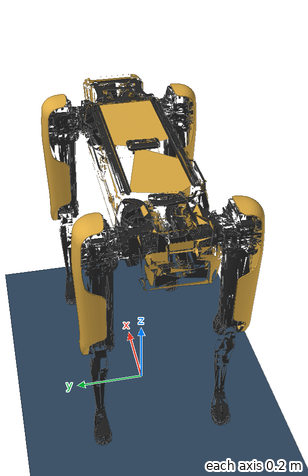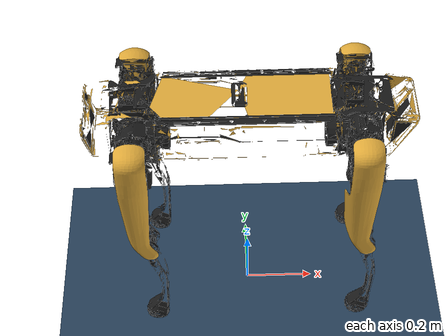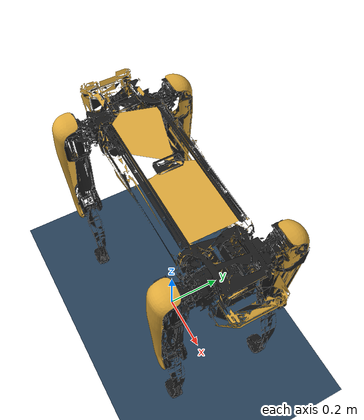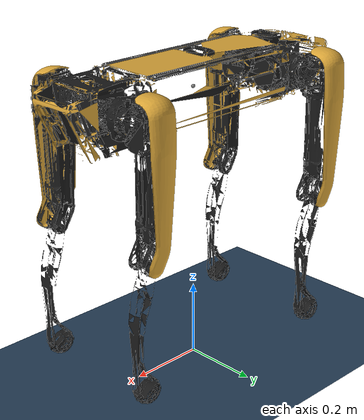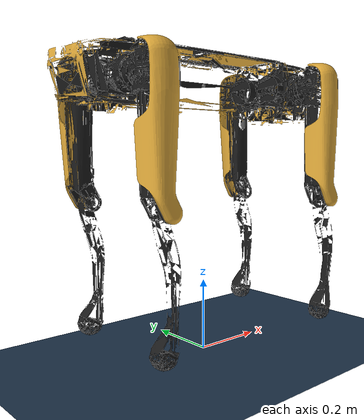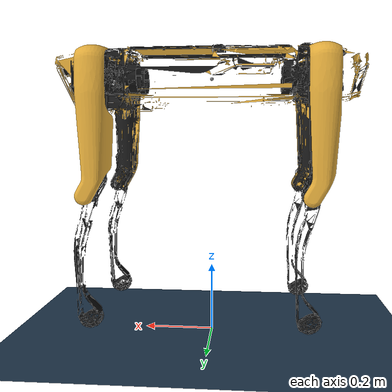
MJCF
<mujoco model="spot-mjx scene (no arm, diagnostic)">
    <include file="models/spot_no_arm.xml"/>

    <visual>
      <headlight diffuse="0.6 0.6 0.6" ambient="0.3 0.3 0.3" specular="0 0 0"/>
      <rgba haze="0.15 0.25 0.35 1"/>
      <global azimuth="120" elevation="-20"/>
    </visual>

    <asset>
        <texture type="skybox" builtin="gradient" rgb1="0.3 0.5 0.7" rgb2="0 0 0" width="512" height="3072"/>
        <texture type="2d" name="groundplane" builtin="checker" mark="edge" rgb1="0.2 0.3 0.4" rgb2="0.1 0.2 0.3"
            markrgb="0.8 0.8 0.8" width="300" height="300"/>
        <material name="groundplane" texture="groundplane" texuniform="true" texrepeat="5 5" reflectance="0.2"/>
    </asset>

    <worldbody>
        <light pos="0 0 1.5" dir="0 0 -1" directional="true"/>
        <camera name="default" pos="0.846 -1.465 0.916" xyaxes="0.866 0.500 0.000 -0.171 0.296 0.940"/>
        <geom name="floor" size="0 0 0.05" type="plane" material="groundplane"/>
    </worldbody>

    <!-- Control Type -->
    <include file="controllers/torque_control_no_arm.xml"/>

    <!-- Add Task Specific Contacts (legs only -- no arm_to_torso) -->
    <include file="contacts/torso_to_floor_contacts.xml"/>
    <include file="contacts/front_thigh_to_floor_contacts.xml"/>
    <include file="contacts/rear_thigh_to_floor_contacts.xml"/>
    <include file="contacts/front_calf_to_floor_contacts.xml"/>
    <include file="contacts/rear_calf_to_floor_contacts.xml"/>
    <include file="contacts/front_leg_self_contacts.xml"/>
    <include file="contacts/rear_leg_self_contacts.xml"/>
    <include file="contacts/front_leg_to_rear_leg_contacts.xml"/>

    <!-- Add Task Specific Sensors (legs only -- no arm_to_torso) -->
    <include file="sensors/torso_to_floor_collision_sensor.xml"/>
    <include file="sensors/front_thigh_to_floor_collision_sensor.xml"/>
    <include file="sensors/rear_thigh_to_floor_collision_sensor.xml"/>
    <include file="sensors/front_calf_to_floor_collision_sensor.xml"/>
    <include file="sensors/rear_calf_to_floor_collision_sensor.xml"/>
    <include file="sensors/foot_to_floor_collision_sensor.xml"/>
    <include file="sensors/front_leg_self_collision_sensor.xml"/>
    <include file="sensors/rear_leg_self_collision_sensor.xml"/>
    <include file="sensors/front_leg_to_rear_leg_collision_sensor.xml"/>

</mujoco>

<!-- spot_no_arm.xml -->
<mujoco model="spot">
  <compiler angle="radian" meshdir="../assets" autolimits="true"/>

  <option iterations="5" ls_iterations="8" timestep="0.001" integrator="Euler">
    <flag eulerdamp="disable"/>
  </option>

  <default>
    <default class="spot">
      <geom type="mesh" friction="0.6" condim="1"/>
      <joint axis="0 1 0" damping="0.1" armature="0.1"/>
      <default class="spot/abduction">
        <joint axis="1 0 0" range="-0.785398 0.785398" frictionloss="0.008"/>
      </default>
      <default class="spot/hip">
        <joint range="-0.898845 2.295108" frictionloss="0.008"/>
      </default>
      <default class="spot/knee">
        <joint range="-2.7929 -0.2471" frictionloss="0.18"/>
      </default>
      <default class="spot/arm">
        <joint frictionloss="10"/>
      </default>
      <default class="spot/foot">
        <site size="0.036" group="5" pos="0 0 -0.3365"/>
      </default>
      <default class="spot/visual">
        <geom group="2" contype="0" conaffinity="0"/>
      </default>
      <default class="spot/collision">
        <geom group="3" contype="0" conaffinity="2"/>
        <default class="spot/collision/foot">
          <geom type="sphere" size="0.036" pos="0 0 -0.3365" solimp="0.9 .95 0.023" condim="3" friction="1.0"/>
        </default>
      </default>
    </default>
  </default>

  <asset>
    <material name="BlackAbs" rgba="0.1 0.1 0.1 1"/>
    <material name="wrap" rgba="0.878431 0.666666 0.227450 1"/>

    <mesh file="body_0.obj"/>
    <mesh file="body_1.obj"/>
    <mesh file="front_left_hip.obj"/>
    <mesh file="front_left_upper_leg_0.obj"/>
    <mesh file="front_left_upper_leg_1.obj"/>
    <mesh file="front_left_lower_leg.obj"/>
    <mesh file="front_right_hip.obj"/>
    <mesh file="front_right_upper_leg_0.obj"/>
    <mesh file="front_right_upper_leg_1.obj"/>
    <mesh file="front_right_lower_leg.obj"/>
    <mesh file="rear_left_hip.obj"/>
    <mesh file="rear_left_upper_leg_0.obj"/>
    <mesh file="rear_left_upper_leg_1.obj"/>
    <mesh file="rear_left_lower_leg.obj"/>
    <mesh file="rear_right_hip.obj"/>
    <mesh file="rear_right_upper_leg_0.obj"/>
    <mesh file="rear_right_upper_leg_1.obj"/>
    <mesh file="rear_right_lower_leg.obj"/>
    <mesh file="body_collision.obj"/>
    <mesh file="left_upper_leg_collision.obj"/>
    <mesh file="left_lower_leg_collision.obj"/>
    <mesh file="right_upper_leg_collision.obj"/>
    <mesh file="right_lower_leg_collision.obj"/>
    <mesh name="arm_link_sh0_base_coll" file="arm_link_sh0_base.obj"/>
    <mesh name="arm_link_sh0_left_motor_coll" file="arm_link_sh0_left_motor.obj"/>
    <mesh name="arm_link_sh0_right_motor_coll" file="arm_link_sh0_right_motor.obj"/>
    <mesh name="arm_link_hr0_coll" file="arm_link_hr0_coll.obj"/>
    <mesh name="arm_link_el0_coll" file="arm_link_el0_coll.obj"/>
    <mesh name="arm_link_el1_main_coll" file="arm_link_el1_main.obj"/>
    <mesh name="arm_link_el1_lip_coll" file="arm_link_el1_lip.obj"/>
    <mesh name="arm_link_wr0_coll" file="arm_link_wr0.obj"/>
    <mesh name="arm_link_wr1_coll" file="arm_link_wr1.obj"/>
    <mesh name="front_jaw_coll" file="front_jaw.obj"/>
    <mesh name="middle_jaw_coll" file="middle_jaw.obj"/>
    <mesh name="jaw_tooth_coll" file="jaw_tooth.obj"/>
    <mesh name="left_hinge_coll" file="left_hinge.obj"/>
    <mesh name="left_finger_coll" file="left_finger.obj"/>
    <mesh name="left_tooth_coll" file="left_tooth.obj"/>
    <mesh name="right_hinge_coll" file="right_hinge.obj"/>
    <mesh name="right_finger_coll" file="right_finger.obj"/>
    <mesh name="right_tooth_coll" file="right_tooth.obj"/>
    <mesh file="arm_link_sh0.obj"/>
    <mesh file="arm_link_sh1_0.obj"/>
    <mesh file="arm_link_sh1_1.obj"/>
    <mesh file="arm_link_hr0.obj"/>
    <mesh file="arm_link_el0.obj"/>
    <mesh file="arm_link_el1_0.obj"/>
    <mesh file="arm_link_el1_1.obj"/>
    <mesh file="arm_link_wr0_0.obj"/>
    <mesh file="arm_link_wr0_1.obj"/>
    <mesh file="arm_link_wr1_0.obj"/>
    <mesh file="arm_link_wr1_1.obj"/>
    <mesh file="arm_link_fngr_0.obj"/>
    <mesh file="arm_link_fngr_1.obj"/>
  </asset>

  <worldbody>
    <light name="spotlight" mode="targetbodycom" target="body" pos="3 0 4" cutoff="30"/>
    <body name="body" childclass="spot" pos="0 0 .75">
      <light name="tracking" mode="trackcom" pos="0 0 2"/>
      <freejoint name="freejoint"/>
      <inertial pos="0 0 -0.00496172" mass="16.70765207" diaginertia="0.081543792 0.549231154 0.569454373"/>
      <geom mesh="body_0" material="BlackAbs" class="spot/visual"/>
      <geom mesh="body_1" material="wrap" class="spot/visual"/>
      <geom name="torso_collision" mesh="body_collision" class="spot/collision"/>
      <site name="imu"/>
      <body name="front_left_hip" pos="0.29785 0.055 0">
        <inertial pos="-0.01586739 0.00855842 9.03e-06" quat="0.981631 0.00442154 0.00104843 0.190735" mass="1.1368834"
          diaginertia="0.00114996 0.00166127 0.00172904"/>
        <joint name="front_left_hip_joint" class="spot/abduction"/>
        <geom material="BlackAbs" mesh="front_left_hip" class="spot/visual"/>
        <body name="front_left_thigh" pos="0 0.110945 0">
          <inertial pos="0.00214442 -0.01110184 -0.07881204" quat="0.698663 0.0171175 -0.713689 -0.0471657" mass="2.2562036" diaginertia="0.00298666 0.0260254 0.0269394"/>
          <joint name="front_left_thigh_joint" class="spot/hip"/>
          <geom mesh="front_left_upper_leg_0" material="wrap" class="spot/visual"/>
          <geom mesh="front_left_upper_leg_1" material="BlackAbs" class="spot/visual"/>
          <geom name="front_left_thigh_collision" mesh="left_upper_leg_collision" class="spot/collision"/>
          <body name="front_left_calf" pos="0.025 0 -0.3205">
            <inertial pos="0.0059736 0 -0.17466427" quat="-0.497592 -0.497592 0.502396 -0.502396" mass="0.33"
              diaginertia="0.000144656 0.00701419 0.00709946"/>
            <joint name="front_left_calf_joint" class="spot/knee"/>
            <geom material="BlackAbs" mesh="front_left_lower_leg" class="spot/visual"/>
            <geom name="front_left_calf_collision" mesh="left_lower_leg_collision" class="spot/collision"/>
            <geom name="front_left_foot_collision" class="spot/collision/foot"/>
            <site name="front_left_foot" class="spot/foot"/>
          </body>
        </body>
      </body>
      <body name="front_right_hip" pos="0.29785 -0.055 0">
        <inertial pos="-0.01586739 -0.00855842 9.03e-06" quat="0.981631 -0.00442154 0.00104843 -0.190735" mass="1.1368834"
          diaginertia="0.00114996 0.00166127 0.00172904"/>
        <joint name="front_right_hip_joint" class="spot/abduction"/>
        <geom material="BlackAbs" mesh="front_right_hip" class="spot/visual"/>
        <body name="front_right_thigh" pos="0 -0.110945 0">
          <inertial pos="0.00214442 0.01110184 -0.07881204" quat="0.0171175 0.698663 0.0471657 0.713689" mass="2.2562036" diaginertia="0.00298666 0.0260254 0.0269394"/>
          <joint name="front_right_thigh_joint" class="spot/hip"/>
          <geom mesh="front_right_upper_leg_0" material="wrap" class="spot/visual"/>
          <geom mesh="front_right_upper_leg_1" material="BlackAbs" class="spot/visual"/>
          <geom name="front_right_thigh_collision" mesh="right_upper_leg_collision" class="spot/collision"/>
          <body name="front_right_calf" pos="0.025 0 -0.3205">
            <inertial pos="0.0059736 0 -0.17466427" quat="-0.497592 -0.497592 0.502396 -0.502396" mass="0.33"
              diaginertia="0.000144656 0.00701419 0.00709946"/>
            <joint name="front_right_calf_joint" class="spot/knee"/>
            <geom material="BlackAbs" mesh="front_right_lower_leg" class="spot/visual"/>
            <geom name="front_right_calf_collision" mesh="right_lower_leg_collision" class="spot/collision"/>
            <geom name="front_right_foot_collision" class="spot/collision/foot"/>
            <site name="front_right_foot" class="spot/foot"/>
          </body>
        </body>
      </body>
      <body name="rear_left_hip" pos="-0.29785 0.055 0">
        <inertial pos="0.01586739 0.00855842 9.03e-06" quat="0.981631 0.00442154 -0.00104843 -0.190735" mass="1.1368834"
          diaginertia="0.00114996 0.00166127 0.00172904"/>
        <joint name="rear_left_hip_joint" class="spot/abduction"/>
        <geom material="BlackAbs" mesh="rear_left_hip" class="spot/visual"/>
        <body name="rear_left_thigh" pos="0 0.110945 0">
          <inertial pos="0.00214442 -0.01110184 -0.07881204" quat="0.698663 0.0171175 -0.713689 -0.0471657" mass="2.2562036" diaginertia="0.00298666 0.0260254 0.0269394"/>
          <joint name="rear_left_thigh_joint" class="spot/hip"/>
          <geom mesh="rear_left_upper_leg_0" material="wrap" class="spot/visual"/>
          <geom mesh="rear_left_upper_leg_1" material="BlackAbs" class="spot/visual"/>
          <geom name="rear_left_thigh_collision" mesh="left_upper_leg_collision" class="spot/collision"/>
          <body name="rear_left_calf" pos="0.025 0 -0.3205">
            <inertial pos="0.0059736 0 -0.17466427" quat="-0.497592 -0.497592 0.502396 -0.502396" mass="0.33"
              diaginertia="0.000144656 0.00701419 0.00709946"/>
            <joint name="rear_left_calf_joint" class="spot/knee"/>
            <geom material="BlackAbs" mesh="rear_left_lower_leg" class="spot/visual"/>
            <geom name="rear_left_calf_collision" mesh="left_lower_leg_collision" class="spot/collision"/>
            <geom name="rear_left_foot_collision" class="spot/collision/foot"/>
            <site name="rear_left_foot" class="spot/foot"/>
          </body>
        </body>
      </body>
      <body name="rear_right_hip" pos="-0.29785 -0.055 0">
        <inertial pos="0.01586739 -0.00855842 9.03e-06" quat="0.981631 -0.00442154 -0.00104843 0.190735" mass="1.1368834"
          diaginertia="0.00114996 0.00166127 0.00172904"/>
        <joint name="rear_right_hip_joint" class="spot/abduction"/>
        <geom material="BlackAbs" mesh="rear_right_hip" class="spot/visual"/>
        <body name="rear_right_thigh" pos="0 -0.110945 0">
          <inertial pos="0.00214442 0.01110184 -0.07881204" quat="0.0171175 0.698663 0.0471657 0.713689" mass="2.2562036" diaginertia="0.00298666 0.0260254 0.0269394"/>
          <joint name="rear_right_thigh_joint" class="spot/hip"/>
          <geom mesh="rear_right_upper_leg_0" material="wrap" class="spot/visual"/>
          <geom mesh="rear_right_upper_leg_1" material="BlackAbs" class="spot/visual"/>
          <geom name="rear_right_thigh_collision" mesh="right_upper_leg_collision" class="spot/collision"/>
          <body name="rear_right_calf" pos="0.025 0 -0.3205">
            <inertial pos="0.0059736 0 -0.17466427" quat="-0.497592 -0.497592 0.502396 -0.502396" mass="0.33"
              diaginertia="0.000144656 0.00701419 0.00709946"/>
            <joint name="rear_right_calf_joint" class="spot/knee"/>
            <geom material="BlackAbs" mesh="rear_right_lower_leg" class="spot/visual"/>
            <geom name="rear_right_calf_collision" mesh="right_lower_leg_collision" class="spot/collision"/>
            <geom name="rear_right_foot_collision" class="spot/collision/foot"/>
            <site name="rear_right_foot" class="spot/foot"/>
          </body>
        </body>
      </body>
    </body>
  </worldbody>

  <contact>
    <pair name="front_left_foot_floor_contact" geom1="front_left_foot_collision" geom2="floor" solimp="0.9 .95 0.023" condim="3" friction="1.0"/>
    <pair name="front_right_foot_floor_contact" geom1="front_right_foot_collision" geom2="floor" solimp="0.9 .95 0.023" condim="3" friction="1.0"/>
    <pair name="rear_left_foot_floor_contact" geom1="rear_left_foot_collision" geom2="floor" solimp="0.9 .95 0.023" condim="3" friction="1.0"/>
    <pair name="rear_right_foot_floor_contact" geom1="rear_right_foot_collision" geom2="floor" solimp="0.9 .95 0.023" condim="3" friction="1.0"/>
  </contact>

  <sensor>
    <!-- IMU: -->
    <gyro name="imu_gyro" site="imu"/>
    <framequat name="imu_orientation" objtype="site" objname="imu"/>
    <accelerometer name="imu_acceleration" site="imu"/>

    <!-- State Estimator: -->
    <velocimeter name="local_linear_velocity" site="imu"/>
    <framepos name="imu_position" objtype="site" objname="imu"/>
    <framelinvel name="front_left_global_linear_velocity" objtype="site" objname="front_left_foot"/>
    <framelinvel name="front_right_global_linear_velocity" objtype="site" objname="front_right_foot"/>
    <framelinvel name="rear_left_global_linear_velocity" objtype="site" objname="rear_left_foot"/>
    <framelinvel name="rear_right_global_linear_velocity" objtype="site" objname="rear_right_foot"/>
    <framepos name="front_left_foot_position" objtype="site" objname="front_left_foot" reftype="site" refname="imu"/>
    <framepos name="front_right_foot_position" objtype="site" objname="front_right_foot" reftype="site" refname="imu"/>
    <framepos name="rear_left_foot_position" objtype="site" objname="rear_left_foot" reftype="site" refname="imu"/>
    <framepos name="rear_right_foot_position" objtype="site" objname="rear_right_foot" reftype="site" refname="imu"/>

    <!-- Globals: -->
    <framezaxis name="upvector" objtype="site" objname="imu"/>
    <framexaxis name="forwardvector" objtype="site" objname="imu"/>
    <framelinvel name="global_linear_velocity" objtype="site" objname="imu"/>
    <frameangvel name="global_angular_velocity" objtype="site" objname="imu"/>
  </sensor>

</mujoco>

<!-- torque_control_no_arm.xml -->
<mujoco>
	<!-- Diagnostic variant of torque_control.xml with the 7 arm actuators
	removed, paired with models/spot_no_arm.xml, to isolate the arm's
	contribution to per-step compute cost from everything else. -->

	<default>
		<default class="spot/abduction/motor">
			<motor forcerange="-45 45"/>
		</default>
		<default class="spot/hip/motor">
			<motor forcerange="-45 45"/>
		</default>
		<default class="spot/knee/motor">
			<!-- Peak output torque from Boston Dynamics' knee torque/angle table (varies -->
			<!-- 30.6-113.24 Nm over the joint range due to the knee linkage); ceiling only. -->
			<motor forcerange="-113 113"/>
		</default>
	</default>

	<actuator>
        <motor class="spot/abduction/motor" name="front_left_hip" joint="front_left_hip_joint"/>
        <motor class="spot/hip/motor" name="front_left_thigh" joint="front_left_thigh_joint"/>
        <motor class="spot/knee/motor" name="front_left_calf" joint="front_left_calf_joint"/>
        <motor class="spot/abduction/motor" name="front_right_hip" joint="front_right_hip_joint"/>
        <motor class="spot/hip/motor" name="front_right_thigh" joint="front_right_thigh_joint"/>
        <motor class="spot/knee/motor" name="front_right_calf" joint="front_right_calf_joint"/>
        <motor class="spot/abduction/motor" name="rear_left_hip" joint="rear_left_hip_joint"/>
        <motor class="spot/hip/motor" name="rear_left_thigh" joint="rear_left_thigh_joint"/>
        <motor class="spot/knee/motor" name="rear_left_calf" joint="rear_left_calf_joint"/>
        <motor class="spot/abduction/motor" name="rear_right_hip" joint="rear_right_hip_joint"/>
        <motor class="spot/hip/motor" name="rear_right_thigh" joint="rear_right_thigh_joint"/>
        <motor class="spot/knee/motor" name="rear_right_calf" joint="rear_right_calf_joint"/>
	</actuator>

	<keyframe>
		<key name="home"
			qpos="0 0 0.46 1 0 0 0 0 1.04 -1.8 0 1.04 -1.8 0 1.04 -1.8 0 1.04 -1.8"
			ctrl="0 0 0 0 0 0 0 0 0 0 0 0"
		/>
  	</keyframe>

</mujoco>

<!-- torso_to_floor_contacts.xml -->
<mujoco>
    <contact>
        <pair name="torso_upper_left_floor_contact" geom1="torso_upper_left_collision" geom2="floor" condim="1" friction="0.8"/>
        <pair name="torso_upper_right_floor_contact" geom1="torso_upper_right_collision" geom2="floor" condim="1" friction="0.8"/>
        <pair name="torso_lower_left_floor_contact" geom1="torso_lower_left_collision" geom2="floor" condim="1" friction="0.8"/>
        <pair name="torso_lower_right_floor_contact" geom1="torso_lower_right_collision" geom2="floor" condim="1" friction="0.8"/>
    </contact>
</mujoco>

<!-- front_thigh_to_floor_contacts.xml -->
<mujoco>
    <contact>
        <pair name="front_left_thigh_floor_contact" geom1="front_left_thigh_upper_collision" geom2="floor" condim="1" friction="0.8"/>
        <pair name="front_right_thigh_floor_contact" geom1="front_right_thigh_upper_collision" geom2="floor" condim="1" friction="0.8"/>
    </contact>
</mujoco>

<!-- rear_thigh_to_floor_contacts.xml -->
<mujoco>
    <contact>
        <pair name="rear_left_thigh_floor_contact" geom1="rear_left_thigh_upper_collision" geom2="floor" condim="1" friction="0.8"/>
        <pair name="rear_right_thigh_floor_contact" geom1="rear_right_thigh_upper_collision" geom2="floor" condim="1" friction="0.8"/>
    </contact>
</mujoco>

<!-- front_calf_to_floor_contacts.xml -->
<mujoco>
    <contact>
        <pair name="front_left_calf_upper_floor_contact" geom1="front_left_calf_upper_collision" geom2="floor" condim="1" friction="0.8"/>
        <pair name="front_left_calf_lower_floor_contact" geom1="front_left_calf_lower_collision" geom2="floor" condim="1" friction="0.8"/>
        <pair name="front_right_calf_upper_floor_contact" geom1="front_right_calf_upper_collision" geom2="floor" condim="1" friction="0.8"/>
        <pair name="front_right_calf_lower_floor_contact" geom1="front_right_calf_lower_collision" geom2="floor" condim="1" friction="0.8"/>
    </contact>
</mujoco>

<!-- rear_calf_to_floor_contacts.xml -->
<mujoco>
    <contact>
        <pair name="rear_left_calf_upper_floor_contact" geom1="rear_left_calf_upper_collision" geom2="floor" condim="1" friction="0.8"/>
        <pair name="rear_left_calf_lower_floor_contact" geom1="rear_left_calf_lower_collision" geom2="floor" condim="1" friction="0.8"/>
        <pair name="rear_right_calf_upper_floor_contact" geom1="rear_right_calf_upper_collision" geom2="floor" condim="1" friction="0.8"/>
        <pair name="rear_right_calf_lower_floor_contact" geom1="rear_right_calf_lower_collision" geom2="floor" condim="1" friction="0.8"/>
    </contact>
</mujoco>

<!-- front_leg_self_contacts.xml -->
<mujoco>
    <contact>
        <pair name="front_left_thigh_foot_contact" geom1="front_left_thigh_upper_collision" geom2="front_left_foot_collision" condim="1" friction="0.8"/>
        <pair name="front_right_thigh_foot_contact" geom1="front_right_thigh_upper_collision" geom2="front_right_foot_collision" condim="1" friction="0.8"/>
    </contact>
</mujoco>

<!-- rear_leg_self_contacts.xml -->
<mujoco>
    <contact>
        <pair name="rear_left_thigh_foot_contact" geom1="rear_left_thigh_upper_collision" geom2="rear_left_foot_collision" condim="1" friction="0.8"/>
        <pair name="rear_right_thigh_foot_contact" geom1="rear_right_thigh_upper_collision" geom2="rear_right_foot_collision" condim="1" friction="0.8"/>
    </contact>
</mujoco>

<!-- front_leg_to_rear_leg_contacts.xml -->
<mujoco>
    <contact>
        <pair name="front_left_foot_rear_left_foot_contact" geom1="front_left_foot_collision" geom2="rear_left_foot_collision" condim="1" friction="0.8"/>
        <pair name="front_left_foot_rear_left_calf_upper_contact" geom1="front_left_foot_collision" geom2="rear_left_calf_upper_collision" condim="1" friction="0.8"/>
        <pair name="rear_left_foot_front_left_calf_upper_contact" geom1="rear_left_foot_collision" geom2="front_left_calf_upper_collision" condim="1" friction="0.8"/>
        <pair name="front_left_foot_rear_left_calf_lower_contact" geom1="front_left_foot_collision" geom2="rear_left_calf_lower_collision" condim="1" friction="0.8"/>
        <pair name="rear_left_foot_front_left_calf_lower_contact" geom1="rear_left_foot_collision" geom2="front_left_calf_lower_collision" condim="1" friction="0.8"/>
        <pair name="front_right_foot_rear_right_foot_contact" geom1="front_right_foot_collision" geom2="rear_right_foot_collision" condim="1" friction="0.8"/>
        <pair name="front_right_foot_rear_right_calf_upper_contact" geom1="front_right_foot_collision" geom2="rear_right_calf_upper_collision" condim="1" friction="0.8"/>
        <pair name="rear_right_foot_front_right_calf_upper_contact" geom1="rear_right_foot_collision" geom2="front_right_calf_upper_collision" condim="1" friction="0.8"/>
        <pair name="front_right_foot_rear_right_calf_lower_contact" geom1="front_right_foot_collision" geom2="rear_right_calf_lower_collision" condim="1" friction="0.8"/>
        <pair name="rear_right_foot_front_right_calf_lower_contact" geom1="rear_right_foot_collision" geom2="front_right_calf_lower_collision" condim="1" friction="0.8"/>
    </contact>
</mujoco>

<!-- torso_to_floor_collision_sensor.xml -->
<mujoco>
  <sensor>
    <contact name="torso_upper_left_to_floor" geom1="torso_upper_left_collision" geom2="floor" reduce="mindist" num="1" data="found"/>
    <contact name="torso_upper_right_to_floor" geom1="torso_upper_right_collision" geom2="floor" reduce="mindist" num="1" data="found"/>
    <contact name="torso_lower_left_to_floor" geom1="torso_lower_left_collision" geom2="floor" reduce="mindist" num="1" data="found"/>
    <contact name="torso_lower_right_to_floor" geom1="torso_lower_right_collision" geom2="floor" reduce="mindist" num="1" data="found"/>
  </sensor>
</mujoco>

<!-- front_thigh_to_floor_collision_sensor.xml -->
<mujoco>
  <sensor>
    <contact name="front_left_thigh_to_floor" geom1="front_left_thigh_upper_collision" geom2="floor" reduce="mindist" num="1" data="found"/>
    <contact name="front_right_thigh_to_floor" geom1="front_right_thigh_upper_collision" geom2="floor" reduce="mindist" num="1" data="found"/>
  </sensor>
</mujoco>

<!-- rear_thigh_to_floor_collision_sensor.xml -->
<mujoco>
  <sensor>
    <contact name="rear_left_thigh_to_floor" geom1="rear_left_thigh_upper_collision" geom2="floor" reduce="mindist" num="1" data="found"/>
    <contact name="rear_right_thigh_to_floor" geom1="rear_right_thigh_upper_collision" geom2="floor" reduce="mindist" num="1" data="found"/>
  </sensor>
</mujoco>

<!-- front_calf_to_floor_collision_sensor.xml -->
<mujoco>
  <sensor>
    <contact name="front_left_calf_upper_to_floor" geom1="front_left_calf_upper_collision" geom2="floor" reduce="mindist" num="1" data="found"/>
    <contact name="front_left_calf_lower_to_floor" geom1="front_left_calf_lower_collision" geom2="floor" reduce="mindist" num="1" data="found"/>
    <contact name="front_right_calf_upper_to_floor" geom1="front_right_calf_upper_collision" geom2="floor" reduce="mindist" num="1" data="found"/>
    <contact name="front_right_calf_lower_to_floor" geom1="front_right_calf_lower_collision" geom2="floor" reduce="mindist" num="1" data="found"/>
  </sensor>
</mujoco>

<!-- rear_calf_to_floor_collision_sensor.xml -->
<mujoco>
  <sensor>
    <contact name="rear_left_calf_upper_to_floor" geom1="rear_left_calf_upper_collision" geom2="floor" reduce="mindist" num="1" data="found"/>
    <contact name="rear_left_calf_lower_to_floor" geom1="rear_left_calf_lower_collision" geom2="floor" reduce="mindist" num="1" data="found"/>
    <contact name="rear_right_calf_upper_to_floor" geom1="rear_right_calf_upper_collision" geom2="floor" reduce="mindist" num="1" data="found"/>
    <contact name="rear_right_calf_lower_to_floor" geom1="rear_right_calf_lower_collision" geom2="floor" reduce="mindist" num="1" data="found"/>
  </sensor>
</mujoco>

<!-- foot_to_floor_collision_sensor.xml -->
<mujoco>
  <sensor>
    <contact name="front_left_foot_to_floor" geom1="front_left_foot_collision" geom2="floor" reduce="mindist" num="1" data="found"/>
    <contact name="front_right_foot_to_floor" geom1="front_right_foot_collision" geom2="floor" reduce="mindist" num="1" data="found"/>
    <contact name="rear_left_foot_to_floor" geom1="rear_left_foot_collision" geom2="floor" reduce="mindist" num="1" data="found"/>
    <contact name="rear_right_foot_to_floor" geom1="rear_right_foot_collision" geom2="floor" reduce="mindist" num="1" data="found"/>
  </sensor>
</mujoco>

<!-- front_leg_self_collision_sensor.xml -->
<mujoco>
  <sensor>
    <contact name="front_left_thigh_to_foot" geom1="front_left_thigh_upper_collision" geom2="front_left_foot_collision" reduce="mindist" num="1" data="found"/>
    <contact name="front_right_thigh_to_foot" geom1="front_right_thigh_upper_collision" geom2="front_right_foot_collision" reduce="mindist" num="1" data="found"/>
  </sensor>
</mujoco>

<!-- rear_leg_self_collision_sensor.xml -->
<mujoco>
  <sensor>
    <contact name="rear_left_thigh_to_foot" geom1="rear_left_thigh_upper_collision" geom2="rear_left_foot_collision" reduce="mindist" num="1" data="found"/>
    <contact name="rear_right_thigh_to_foot" geom1="rear_right_thigh_upper_collision" geom2="rear_right_foot_collision" reduce="mindist" num="1" data="found"/>
  </sensor>
</mujoco>

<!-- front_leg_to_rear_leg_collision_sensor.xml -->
<mujoco>
  <sensor>
    <contact name="front_left_foot_to_rear_left_foot" geom1="front_left_foot_collision" geom2="rear_left_foot_collision" reduce="mindist" num="1" data="found"/>
    <contact name="front_left_foot_to_rear_left_calf_upper" geom1="front_left_foot_collision" geom2="rear_left_calf_upper_collision" reduce="mindist" num="1" data="found"/>
    <contact name="rear_left_foot_to_front_left_calf_upper" geom1="rear_left_foot_collision" geom2="front_left_calf_upper_collision" reduce="mindist" num="1" data="found"/>
    <contact name="front_left_foot_to_rear_left_calf_lower" geom1="front_left_foot_collision" geom2="rear_left_calf_lower_collision" reduce="mindist" num="1" data="found"/>
    <contact name="rear_left_foot_to_front_left_calf_lower" geom1="rear_left_foot_collision" geom2="front_left_calf_lower_collision" reduce="mindist" num="1" data="found"/>
    <contact name="front_right_foot_to_rear_right_foot" geom1="front_right_foot_collision" geom2="rear_right_foot_collision" reduce="mindist" num="1" data="found"/>
    <contact name="front_right_foot_to_rear_right_calf_upper" geom1="front_right_foot_collision" geom2="rear_right_calf_upper_collision" reduce="mindist" num="1" data="found"/>
    <contact name="rear_right_foot_to_front_right_calf_upper" geom1="rear_right_foot_collision" geom2="front_right_calf_upper_collision" reduce="mindist" num="1" data="found"/>
    <contact name="front_right_foot_to_rear_right_calf_lower" geom1="front_right_foot_collision" geom2="rear_right_calf_lower_collision" reduce="mindist" num="1" data="found"/>
    <contact name="rear_right_foot_to_front_right_calf_lower" geom1="rear_right_foot_collision" geom2="front_right_calf_lower_collision" reduce="mindist" num="1" data="found"/>
  </sensor>
</mujoco>
